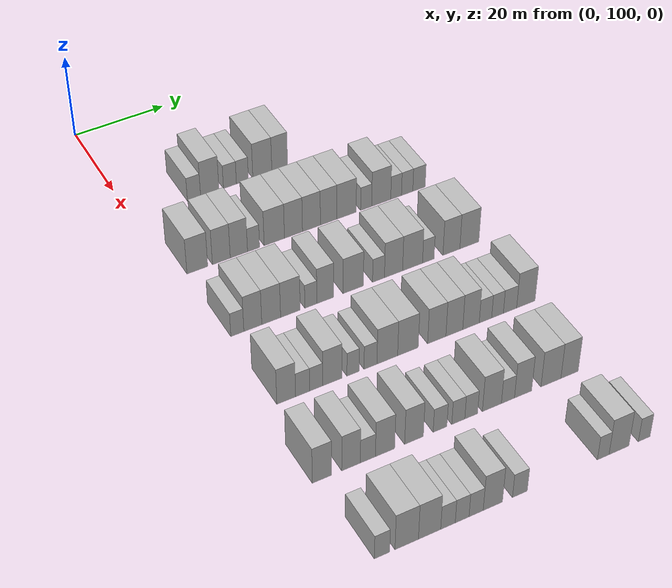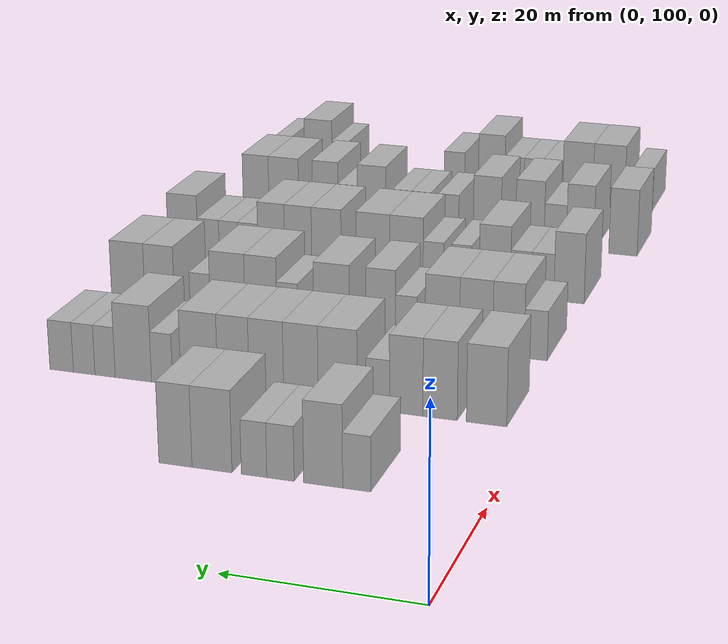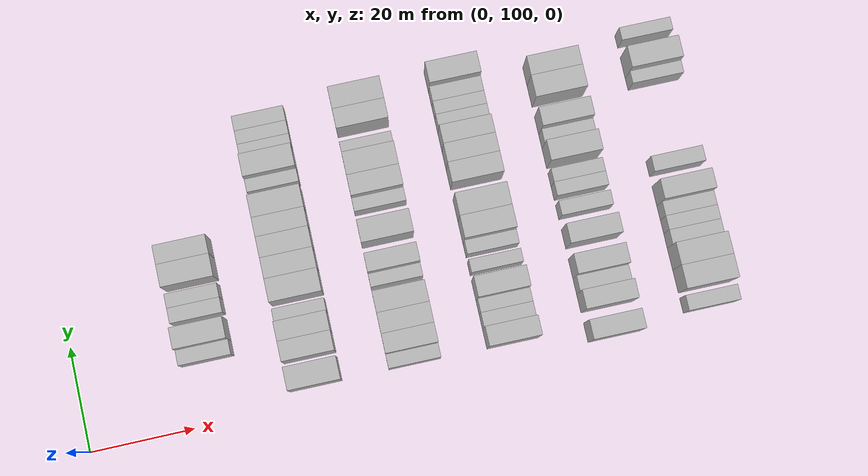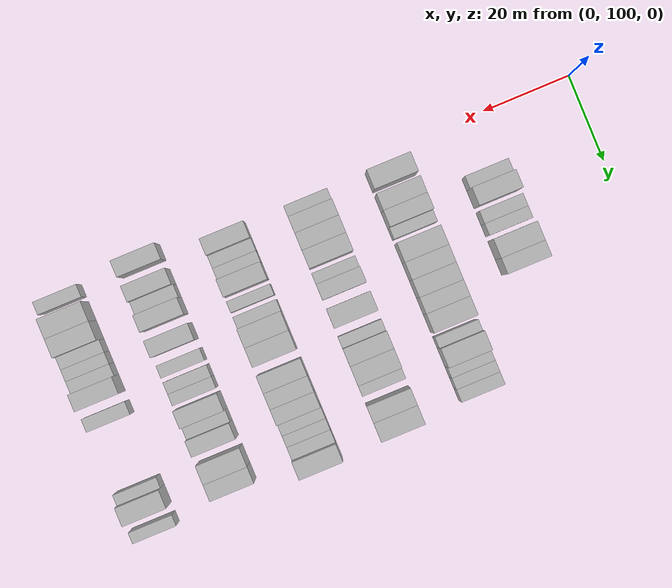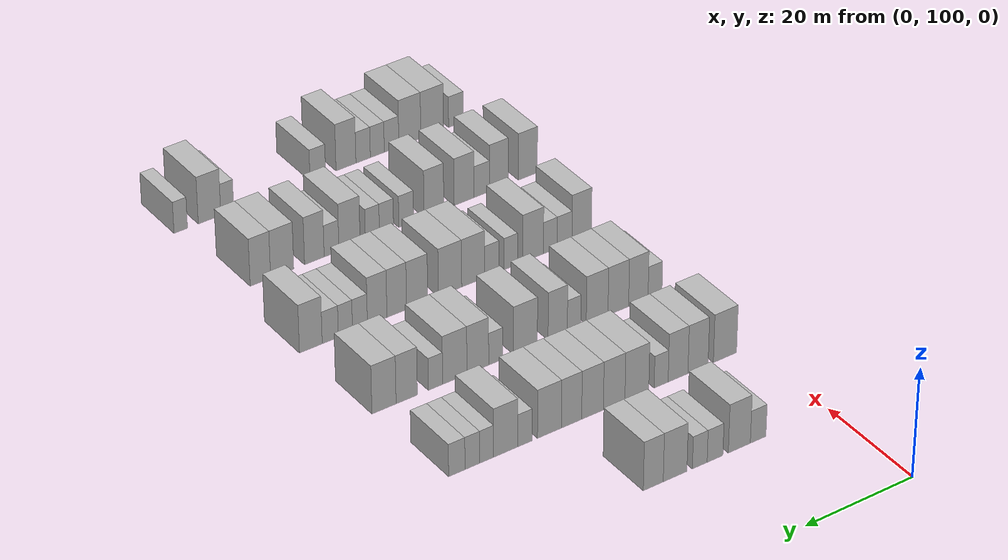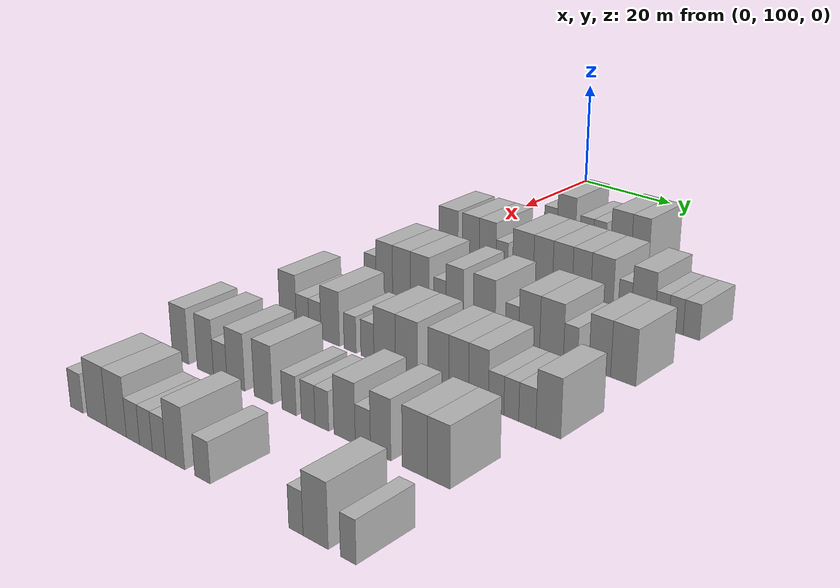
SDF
<sdf version="1.6">
 <world name="default">
  <model name="building_113">
   <static>1</static>
   <pose>25.0000 113.2833 0 0.000000 0.000000 0.000000</pose>
   <link name="link">
    <pose>0 0 3.00 0 0 0</pose>
    <collision name="collision"><geometry><box><size>10.0000 2.9143 6.0000</size></box></geometry></collision>
    <visual name="visual">
     <cast_shadows>0</cast_shadows>
     <geometry><box><size>10.0000 2.9143 6.0000</size></box></geometry>
     <material>
      <script>
       <uri>model://HANNAS_wall/materials/scripts</uri>
       <uri>model://HANNAS_wall/materials/textures</uri>
       <name>vrc/HANNAS_wall</name>
      </script>
     </material>
    </visual>
   </link>
  </model>
  <model name="building_114">
   <static>1</static>
   <pose>25.0000 116.7897 0 0.000000 0.000000 0.000000</pose>
   <link name="link">
    <pose>0 0 4.50 0 0 0</pose>
    <collision name="collision"><geometry><box><size>10.0000 4.0985 9.0000</size></box></geometry></collision>
    <visual name="visual">
     <cast_shadows>0</cast_shadows>
     <geometry><box><size>10.0000 4.0985 9.0000</size></box></geometry>
     <material>
      <script>
       <uri>model://HANNAS_wall/materials/scripts</uri>
       <uri>model://HANNAS_wall/materials/textures</uri>
       <name>vrc/HANNAS_wall</name>
      </script>
     </material>
    </visual>
   </link>
  </model>
  <model name="building_115">
   <static>1</static>
   <pose>25.0000 121.2966 0 0.000000 0.000000 0.000000</pose>
   <link name="link">
    <pose>0 0 3.00 0 0 0</pose>
    <collision name="collision"><geometry><box><size>10.0000 2.9153 6.0000</size></box></geometry></collision>
    <visual name="visual">
     <cast_shadows>0</cast_shadows>
     <geometry><box><size>10.0000 2.9153 6.0000</size></box></geometry>
     <material>
      <script>
       <uri>model://HANNAS_wall/materials/scripts</uri>
       <uri>model://HANNAS_wall/materials/textures</uri>
       <name>vrc/HANNAS_wall</name>
      </script>
     </material>
    </visual>
   </link>
  </model>
  <model name="building_116">
   <static>1</static>
   <pose>25.0000 124.1135 0 0.000000 0.000000 0.000000</pose>
   <link name="link">
    <pose>0 0 3.00 0 0 0</pose>
    <collision name="collision"><geometry><box><size>10.0000 2.7186 6.0000</size></box></geometry></collision>
    <visual name="visual">
     <cast_shadows>0</cast_shadows>
     <geometry><box><size>10.0000 2.7186 6.0000</size></box></geometry>
     <material>
      <script>
       <uri>model://HANNAS_wall/materials/scripts</uri>
       <uri>model://HANNAS_wall/materials/textures</uri>
       <name>vrc/HANNAS_wall</name>
      </script>
     </material>
    </visual>
   </link>
  </model>
  <model name="building_117">
   <static>1</static>
   <pose>25.0000 128.6400 0 0.000000 0.000000 0.000000</pose>
   <link name="link">
    <pose>0 0 4.50 0 0 0</pose>
    <collision name="collision"><geometry><box><size>10.0000 4.3344 9.0000</size></box></geometry></collision>
    <visual name="visual">
     <cast_shadows>0</cast_shadows>
     <geometry><box><size>10.0000 4.3344 9.0000</size></box></geometry>
     <material>
      <script>
       <uri>model://HANNAS_wall/materials/scripts</uri>
       <uri>model://HANNAS_wall/materials/textures</uri>
       <name>vrc/HANNAS_wall</name>
      </script>
     </material>
    </visual>
   </link>
  </model>
  <model name="building_118">
   <static>1</static>
   <pose>25.0000 132.6197 0 0.000000 0.000000 0.000000</pose>
   <link name="link">
    <pose>0 0 4.50 0 0 0</pose>
    <collision name="collision"><geometry><box><size>10.0000 3.6251 9.0000</size></box></geometry></collision>
    <visual name="visual">
     <cast_shadows>0</cast_shadows>
     <geometry><box><size>10.0000 3.6251 9.0000</size></box></geometry>
     <material>
      <script>
       <uri>model://HANNAS_wall/materials/scripts</uri>
       <uri>model://HANNAS_wall/materials/textures</uri>
       <name>vrc/HANNAS_wall</name>
      </script>
     </material>
    </visual>
   </link>
  </model>
  <model name="building_263">
   <static>1</static>
   <pose>44.0000 105.0561 0 0.000000 0.000000 0.000000</pose>
   <link name="link">
    <pose>0 0 4.50 0 0 0</pose>
    <collision name="collision"><geometry><box><size>10.0000 4.4216 9.0000</size></box></geometry></collision>
    <visual name="visual">
     <cast_shadows>0</cast_shadows>
     <geometry><box><size>10.0000 4.4216 9.0000</size></box></geometry>
     <material>
      <script>
       <uri>model://HANNAS_wall/materials/scripts</uri>
       <uri>model://HANNAS_wall/materials/textures</uri>
       <name>vrc/HANNAS_wall</name>
      </script>
     </material>
    </visual>
   </link>
  </model>
  <model name="building_264">
   <static>1</static>
   <pose>44.0000 110.1790 0 0.000000 0.000000 0.000000</pose>
   <link name="link">
    <pose>0 0 4.50 0 0 0</pose>
    <collision name="collision"><geometry><box><size>10.0000 3.8243 9.0000</size></box></geometry></collision>
    <visual name="visual">
     <cast_shadows>0</cast_shadows>
     <geometry><box><size>10.0000 3.8243 9.0000</size></box></geometry>
     <material>
      <script>
       <uri>model://HANNAS_wall/materials/scripts</uri>
       <uri>model://HANNAS_wall/materials/textures</uri>
       <name>vrc/HANNAS_wall</name>
      </script>
     </material>
    </visual>
   </link>
  </model>
  <model name="building_265">
   <static>1</static>
   <pose>44.0000 113.9586 0 0.000000 0.000000 0.000000</pose>
   <link name="link">
    <pose>0 0 4.50 0 0 0</pose>
    <collision name="collision"><geometry><box><size>10.0000 3.7348 9.0000</size></box></geometry></collision>
    <visual name="visual">
     <cast_shadows>0</cast_shadows>
     <geometry><box><size>10.0000 3.7348 9.0000</size></box></geometry>
     <material>
      <script>
       <uri>model://HANNAS_wall/materials/scripts</uri>
       <uri>model://HANNAS_wall/materials/textures</uri>
       <name>vrc/HANNAS_wall</name>
      </script>
     </material>
    </visual>
   </link>
  </model>
  <model name="building_266">
   <static>1</static>
   <pose>44.0000 117.1397 0 0.000000 0.000000 0.000000</pose>
   <link name="link">
    <pose>0 0 3.00 0 0 0</pose>
    <collision name="collision"><geometry><box><size>10.0000 2.6275 6.0000</size></box></geometry></collision>
    <visual name="visual">
     <cast_shadows>0</cast_shadows>
     <geometry><box><size>10.0000 2.6275 6.0000</size></box></geometry>
     <material>
      <script>
       <uri>model://HANNAS_wall/materials/scripts</uri>
       <uri>model://HANNAS_wall/materials/textures</uri>
       <name>vrc/HANNAS_wall</name>
      </script>
     </material>
    </visual>
   </link>
  </model>
  <model name="building_267">
   <static>1</static>
   <pose>44.0000 121.6784 0 0.000000 0.000000 0.000000</pose>
   <link name="link">
    <pose>0 0 4.50 0 0 0</pose>
    <collision name="collision"><geometry><box><size>10.0000 4.4498 9.0000</size></box></geometry></collision>
    <visual name="visual">
     <cast_shadows>0</cast_shadows>
     <geometry><box><size>10.0000 4.4498 9.0000</size></box></geometry>
     <material>
      <script>
       <uri>model://HANNAS_wall/materials/scripts</uri>
       <uri>model://HANNAS_wall/materials/textures</uri>
       <name>vrc/HANNAS_wall</name>
      </script>
     </material>
    </visual>
   </link>
  </model>
  <model name="building_268">
   <static>1</static>
   <pose>44.0000 125.8989 0 0.000000 0.000000 0.000000</pose>
   <link name="link">
    <pose>0 0 4.50 0 0 0</pose>
    <collision name="collision"><geometry><box><size>10.0000 3.9913 9.0000</size></box></geometry></collision>
    <visual name="visual">
     <cast_shadows>0</cast_shadows>
     <geometry><box><size>10.0000 3.9913 9.0000</size></box></geometry>
     <material>
      <script>
       <uri>model://HANNAS_wall/materials/scripts</uri>
       <uri>model://HANNAS_wall/materials/textures</uri>
       <name>vrc/HANNAS_wall</name>
      </script>
     </material>
    </visual>
   </link>
  </model>
  <model name="building_269">
   <static>1</static>
   <pose>44.0000 129.8944 0 0.000000 0.000000 0.000000</pose>
   <link name="link">
    <pose>0 0 4.50 0 0 0</pose>
    <collision name="collision"><geometry><box><size>10.0000 3.9996 9.0000</size></box></geometry></collision>
    <visual name="visual">
     <cast_shadows>0</cast_shadows>
     <geometry><box><size>10.0000 3.9996 9.0000</size></box></geometry>
     <material>
      <script>
       <uri>model://HANNAS_wall/materials/scripts</uri>
       <uri>model://HANNAS_wall/materials/textures</uri>
       <name>vrc/HANNAS_wall</name>
      </script>
     </material>
    </visual>
   </link>
  </model>
  <model name="building_270">
   <static>1</static>
   <pose>44.0000 133.7477 0 0.000000 0.000000 0.000000</pose>
   <link name="link">
    <pose>0 0 4.50 0 0 0</pose>
    <collision name="collision"><geometry><box><size>10.0000 3.7070 9.0000</size></box></geometry></collision>
    <visual name="visual">
     <cast_shadows>0</cast_shadows>
     <geometry><box><size>10.0000 3.7070 9.0000</size></box></geometry>
     <material>
      <script>
       <uri>model://HANNAS_wall/materials/scripts</uri>
       <uri>model://HANNAS_wall/materials/textures</uri>
       <name>vrc/HANNAS_wall</name>
      </script>
     </material>
    </visual>
   </link>
  </model>
  <model name="building_271">
   <static>1</static>
   <pose>44.0000 137.7886 0 0.000000 0.000000 0.000000</pose>
   <link name="link">
    <pose>0 0 4.50 0 0 0</pose>
    <collision name="collision"><geometry><box><size>10.0000 4.3747 9.0000</size></box></geometry></collision>
    <visual name="visual">
     <cast_shadows>0</cast_shadows>
     <geometry><box><size>10.0000 4.3747 9.0000</size></box></geometry>
     <material>
      <script>
       <uri>model://HANNAS_wall/materials/scripts</uri>
       <uri>model://HANNAS_wall/materials/textures</uri>
       <name>vrc/HANNAS_wall</name>
      </script>
     </material>
    </visual>
   </link>
  </model>
  <model name="building_272">
   <static>1</static>
   <pose>44.0000 142.2442 0 0.000000 0.000000 0.000000</pose>
   <link name="link">
    <pose>0 0 3.00 0 0 0</pose>
    <collision name="collision"><geometry><box><size>10.0000 2.5365 6.0000</size></box></geometry></collision>
    <visual name="visual">
     <cast_shadows>0</cast_shadows>
     <geometry><box><size>10.0000 2.5365 6.0000</size></box></geometry>
     <material>
      <script>
       <uri>model://HANNAS_wall/materials/scripts</uri>
       <uri>model://HANNAS_wall/materials/textures</uri>
       <name>vrc/HANNAS_wall</name>
      </script>
     </material>
    </visual>
   </link>
  </model>
  <model name="building_273">
   <static>1</static>
   <pose>44.0000 145.7067 0 0.000000 0.000000 0.000000</pose>
   <link name="link">
    <pose>0 0 4.50 0 0 0</pose>
    <collision name="collision"><geometry><box><size>10.0000 4.3885 9.0000</size></box></geometry></collision>
    <visual name="visual">
     <cast_shadows>0</cast_shadows>
     <geometry><box><size>10.0000 4.3885 9.0000</size></box></geometry>
     <material>
      <script>
       <uri>model://HANNAS_wall/materials/scripts</uri>
       <uri>model://HANNAS_wall/materials/textures</uri>
       <name>vrc/HANNAS_wall</name>
      </script>
     </material>
    </visual>
   </link>
  </model>
  <model name="building_274">
   <static>1</static>
   <pose>44.0000 149.1392 0 0.000000 0.000000 0.000000</pose>
   <link name="link">
    <pose>0 0 3.00 0 0 0</pose>
    <collision name="collision"><geometry><box><size>10.0000 2.4764 6.0000</size></box></geometry></collision>
    <visual name="visual">
     <cast_shadows>0</cast_shadows>
     <geometry><box><size>10.0000 2.4764 6.0000</size></box></geometry>
     <material>
      <script>
       <uri>model://HANNAS_wall/materials/scripts</uri>
       <uri>model://HANNAS_wall/materials/textures</uri>
       <name>vrc/HANNAS_wall</name>
      </script>
     </material>
    </visual>
   </link>
  </model>
  <model name="building_275">
   <static>1</static>
   <pose>44.0000 151.6976 0 0.000000 0.000000 0.000000</pose>
   <link name="link">
    <pose>0 0 3.00 0 0 0</pose>
    <collision name="collision"><geometry><box><size>10.0000 2.6405 6.0000</size></box></geometry></collision>
    <visual name="visual">
     <cast_shadows>0</cast_shadows>
     <geometry><box><size>10.0000 2.6405 6.0000</size></box></geometry>
     <material>
      <script>
       <uri>model://HANNAS_wall/materials/scripts</uri>
       <uri>model://HANNAS_wall/materials/textures</uri>
       <name>vrc/HANNAS_wall</name>
      </script>
     </material>
    </visual>
   </link>
  </model>
  <model name="building_276">
   <static>1</static>
   <pose>44.0000 154.4710 0 0.000000 0.000000 0.000000</pose>
   <link name="link">
    <pose>0 0 3.00 0 0 0</pose>
    <collision name="collision"><geometry><box><size>10.0000 2.9061 6.0000</size></box></geometry></collision>
    <visual name="visual">
     <cast_shadows>0</cast_shadows>
     <geometry><box><size>10.0000 2.9061 6.0000</size></box></geometry>
     <material>
      <script>
       <uri>model://HANNAS_wall/materials/scripts</uri>
       <uri>model://HANNAS_wall/materials/textures</uri>
       <name>vrc/HANNAS_wall</name>
      </script>
     </material>
    </visual>
   </link>
  </model>
  <model name="building_441">
   <static>1</static>
   <pose>63.0000 104.2739 0 0.000000 0.000000 0.000000</pose>
   <link name="link">
    <pose>0 0 3.00 0 0 0</pose>
    <collision name="collision"><geometry><box><size>10.0000 2.6978 6.0000</size></box></geometry></collision>
    <visual name="visual">
     <cast_shadows>0</cast_shadows>
     <geometry><box><size>10.0000 2.6978 6.0000</size></box></geometry>
     <material>
      <script>
       <uri>model://HANNAS_wall/materials/scripts</uri>
       <uri>model://HANNAS_wall/materials/textures</uri>
       <name>vrc/HANNAS_wall</name>
      </script>
     </material>
    </visual>
   </link>
  </model>
  <model name="building_442">
   <static>1</static>
   <pose>63.0000 107.4857 0 0.000000 0.000000 0.000000</pose>
   <link name="link">
    <pose>0 0 4.50 0 0 0</pose>
    <collision name="collision"><geometry><box><size>10.0000 3.7256 9.0000</size></box></geometry></collision>
    <visual name="visual">
     <cast_shadows>0</cast_shadows>
     <geometry><box><size>10.0000 3.7256 9.0000</size></box></geometry>
     <material>
      <script>
       <uri>model://HANNAS_wall/materials/scripts</uri>
       <uri>model://HANNAS_wall/materials/textures</uri>
       <name>vrc/HANNAS_wall</name>
      </script>
     </material>
    </visual>
   </link>
  </model>
  <model name="building_443">
   <static>1</static>
   <pose>63.0000 111.3214 0 0.000000 0.000000 0.000000</pose>
   <link name="link">
    <pose>0 0 4.50 0 0 0</pose>
    <collision name="collision"><geometry><box><size>10.0000 3.9460 9.0000</size></box></geometry></collision>
    <visual name="visual">
     <cast_shadows>0</cast_shadows>
     <geometry><box><size>10.0000 3.9460 9.0000</size></box></geometry>
     <material>
      <script>
       <uri>model://HANNAS_wall/materials/scripts</uri>
       <uri>model://HANNAS_wall/materials/textures</uri>
       <name>vrc/HANNAS_wall</name>
      </script>
     </material>
    </visual>
   </link>
  </model>
  <model name="building_444">
   <static>1</static>
   <pose>63.0000 115.3604 0 0.000000 0.000000 0.000000</pose>
   <link name="link">
    <pose>0 0 4.50 0 0 0</pose>
    <collision name="collision"><geometry><box><size>10.0000 4.1319 9.0000</size></box></geometry></collision>
    <visual name="visual">
     <cast_shadows>0</cast_shadows>
     <geometry><box><size>10.0000 4.1319 9.0000</size></box></geometry>
     <material>
      <script>
       <uri>model://HANNAS_wall/materials/scripts</uri>
       <uri>model://HANNAS_wall/materials/textures</uri>
       <name>vrc/HANNAS_wall</name>
      </script>
     </material>
    </visual>
   </link>
  </model>
  <model name="building_445">
   <static>1</static>
   <pose>63.0000 119.7102 0 0.000000 0.000000 0.000000</pose>
   <link name="link">
    <pose>0 0 3.00 0 0 0</pose>
    <collision name="collision"><geometry><box><size>10.0000 2.5678 6.0000</size></box></geometry></collision>
    <visual name="visual">
     <cast_shadows>0</cast_shadows>
     <geometry><box><size>10.0000 2.5678 6.0000</size></box></geometry>
     <material>
      <script>
       <uri>model://HANNAS_wall/materials/scripts</uri>
       <uri>model://HANNAS_wall/materials/textures</uri>
       <name>vrc/HANNAS_wall</name>
      </script>
     </material>
    </visual>
   </link>
  </model>
  <model name="building_446">
   <static>1</static>
   <pose>63.0000 122.8058 0 0.000000 0.000000 0.000000</pose>
   <link name="link">
    <pose>0 0 4.50 0 0 0</pose>
    <collision name="collision"><geometry><box><size>10.0000 3.6233 9.0000</size></box></geometry></collision>
    <visual name="visual">
     <cast_shadows>0</cast_shadows>
     <geometry><box><size>10.0000 3.6233 9.0000</size></box></geometry>
     <material>
      <script>
       <uri>model://HANNAS_wall/materials/scripts</uri>
       <uri>model://HANNAS_wall/materials/textures</uri>
       <name>vrc/HANNAS_wall</name>
      </script>
     </material>
    </visual>
   </link>
  </model>
  <model name="building_447">
   <static>1</static>
   <pose>63.0000 128.8305 0 0.000000 0.000000 0.000000</pose>
   <link name="link">
    <pose>0 0 4.50 0 0 0</pose>
    <collision name="collision"><geometry><box><size>10.0000 4.4262 9.0000</size></box></geometry></collision>
    <visual name="visual">
     <cast_shadows>0</cast_shadows>
     <geometry><box><size>10.0000 4.4262 9.0000</size></box></geometry>
     <material>
      <script>
       <uri>model://HANNAS_wall/materials/scripts</uri>
       <uri>model://HANNAS_wall/materials/textures</uri>
       <name>vrc/HANNAS_wall</name>
      </script>
     </material>
    </visual>
   </link>
  </model>
  <model name="building_448">
   <static>1</static>
   <pose>63.0000 134.3528 0 0.000000 0.000000 0.000000</pose>
   <link name="link">
    <pose>0 0 3.00 0 0 0</pose>
    <collision name="collision"><geometry><box><size>10.0000 2.6183 6.0000</size></box></geometry></collision>
    <visual name="visual">
     <cast_shadows>0</cast_shadows>
     <geometry><box><size>10.0000 2.6183 6.0000</size></box></geometry>
     <material>
      <script>
       <uri>model://HANNAS_wall/materials/scripts</uri>
       <uri>model://HANNAS_wall/materials/textures</uri>
       <name>vrc/HANNAS_wall</name>
      </script>
     </material>
    </visual>
   </link>
  </model>
  <model name="building_449">
   <static>1</static>
   <pose>63.0000 137.6667 0 0.000000 0.000000 0.000000</pose>
   <link name="link">
    <pose>0 0 4.50 0 0 0</pose>
    <collision name="collision"><geometry><box><size>10.0000 4.0096 9.0000</size></box></geometry></collision>
    <visual name="visual">
     <cast_shadows>0</cast_shadows>
     <geometry><box><size>10.0000 4.0096 9.0000</size></box></geometry>
     <material>
      <script>
       <uri>model://HANNAS_wall/materials/scripts</uri>
       <uri>model://HANNAS_wall/materials/textures</uri>
       <name>vrc/HANNAS_wall</name>
      </script>
     </material>
    </visual>
   </link>
  </model>
  <model name="building_450">
   <static>1</static>
   <pose>63.0000 141.8943 0 0.000000 0.000000 0.000000</pose>
   <link name="link">
    <pose>0 0 4.50 0 0 0</pose>
    <collision name="collision"><geometry><box><size>10.0000 4.4457 9.0000</size></box></geometry></collision>
    <visual name="visual">
     <cast_shadows>0</cast_shadows>
     <geometry><box><size>10.0000 4.4457 9.0000</size></box></geometry>
     <material>
      <script>
       <uri>model://HANNAS_wall/materials/scripts</uri>
       <uri>model://HANNAS_wall/materials/textures</uri>
       <name>vrc/HANNAS_wall</name>
      </script>
     </material>
    </visual>
   </link>
  </model>
  <model name="building_451">
   <static>1</static>
   <pose>63.0000 145.4130 0 0.000000 0.000000 0.000000</pose>
   <link name="link">
    <pose>0 0 3.00 0 0 0</pose>
    <collision name="collision"><geometry><box><size>10.0000 2.5918 6.0000</size></box></geometry></collision>
    <visual name="visual">
     <cast_shadows>0</cast_shadows>
     <geometry><box><size>10.0000 2.5918 6.0000</size></box></geometry>
     <material>
      <script>
       <uri>model://HANNAS_wall/materials/scripts</uri>
       <uri>model://HANNAS_wall/materials/textures</uri>
       <name>vrc/HANNAS_wall</name>
      </script>
     </material>
    </visual>
   </link>
  </model>
  <model name="building_452">
   <static>1</static>
   <pose>63.0000 150.6319 0 0.000000 0.000000 0.000000</pose>
   <link name="link">
    <pose>0 0 4.50 0 0 0</pose>
    <collision name="collision"><geometry><box><size>10.0000 3.8460 9.0000</size></box></geometry></collision>
    <visual name="visual">
     <cast_shadows>0</cast_shadows>
     <geometry><box><size>10.0000 3.8460 9.0000</size></box></geometry>
     <material>
      <script>
       <uri>model://HANNAS_wall/materials/scripts</uri>
       <uri>model://HANNAS_wall/materials/textures</uri>
       <name>vrc/HANNAS_wall</name>
      </script>
     </material>
    </visual>
   </link>
  </model>
  <model name="building_453">
   <static>1</static>
   <pose>63.0000 154.7284 0 0.000000 0.000000 0.000000</pose>
   <link name="link">
    <pose>0 0 4.50 0 0 0</pose>
    <collision name="collision"><geometry><box><size>10.0000 4.3468 9.0000</size></box></geometry></collision>
    <visual name="visual">
     <cast_shadows>0</cast_shadows>
     <geometry><box><size>10.0000 4.3468 9.0000</size></box></geometry>
     <material>
      <script>
       <uri>model://HANNAS_wall/materials/scripts</uri>
       <uri>model://HANNAS_wall/materials/textures</uri>
       <name>vrc/HANNAS_wall</name>
      </script>
     </material>
    </visual>
   </link>
  </model>
  <model name="building_606">
   <static>1</static>
   <pose>82.0000 104.6655 0 0.000000 0.000000 0.000000</pose>
   <link name="link">
    <pose>0 0 4.50 0 0 0</pose>
    <collision name="collision"><geometry><box><size>10.0000 3.7875 9.0000</size></box></geometry></collision>
    <visual name="visual">
     <cast_shadows>0</cast_shadows>
     <geometry><box><size>10.0000 3.7875 9.0000</size></box></geometry>
     <material>
      <script>
       <uri>model://HANNAS_wall/materials/scripts</uri>
       <uri>model://HANNAS_wall/materials/textures</uri>
       <name>vrc/HANNAS_wall</name>
      </script>
     </material>
    </visual>
   </link>
  </model>
  <model name="building_607">
   <static>1</static>
   <pose>82.0000 107.9809 0 0.000000 0.000000 0.000000</pose>
   <link name="link">
    <pose>0 0 3.00 0 0 0</pose>
    <collision name="collision"><geometry><box><size>10.0000 2.8433 6.0000</size></box></geometry></collision>
    <visual name="visual">
     <cast_shadows>0</cast_shadows>
     <geometry><box><size>10.0000 2.8433 6.0000</size></box></geometry>
     <material>
      <script>
       <uri>model://HANNAS_wall/materials/scripts</uri>
       <uri>model://HANNAS_wall/materials/textures</uri>
       <name>vrc/HANNAS_wall</name>
      </script>
     </material>
    </visual>
   </link>
  </model>
  <model name="building_608">
   <static>1</static>
   <pose>82.0000 110.7301 0 0.000000 0.000000 0.000000</pose>
   <link name="link">
    <pose>0 0 3.00 0 0 0</pose>
    <collision name="collision"><geometry><box><size>10.0000 2.6552 6.0000</size></box></geometry></collision>
    <visual name="visual">
     <cast_shadows>0</cast_shadows>
     <geometry><box><size>10.0000 2.6552 6.0000</size></box></geometry>
     <material>
      <script>
       <uri>model://HANNAS_wall/materials/scripts</uri>
       <uri>model://HANNAS_wall/materials/textures</uri>
       <name>vrc/HANNAS_wall</name>
      </script>
     </material>
    </visual>
   </link>
  </model>
  <model name="building_609">
   <static>1</static>
   <pose>82.0000 114.0547 0 0.000000 0.000000 0.000000</pose>
   <link name="link">
    <pose>0 0 4.50 0 0 0</pose>
    <collision name="collision"><geometry><box><size>10.0000 3.9939 9.0000</size></box></geometry></collision>
    <visual name="visual">
     <cast_shadows>0</cast_shadows>
     <geometry><box><size>10.0000 3.9939 9.0000</size></box></geometry>
     <material>
      <script>
       <uri>model://HANNAS_wall/materials/scripts</uri>
       <uri>model://HANNAS_wall/materials/textures</uri>
       <name>vrc/HANNAS_wall</name>
      </script>
     </material>
    </visual>
   </link>
  </model>
  <model name="building_610">
   <static>1</static>
   <pose>82.0000 118.3256 0 0.000000 0.000000 0.000000</pose>
   <link name="link">
    <pose>0 0 3.00 0 0 0</pose>
    <collision name="collision"><geometry><box><size>10.0000 2.5481 6.0000</size></box></geometry></collision>
    <visual name="visual">
     <cast_shadows>0</cast_shadows>
     <geometry><box><size>10.0000 2.5481 6.0000</size></box></geometry>
     <material>
      <script>
       <uri>model://HANNAS_wall/materials/scripts</uri>
       <uri>model://HANNAS_wall/materials/textures</uri>
       <name>vrc/HANNAS_wall</name>
      </script>
     </material>
    </visual>
   </link>
  </model>
  <model name="building_611">
   <static>1</static>
   <pose>82.0000 121.9488 0 0.000000 0.000000 0.000000</pose>
   <link name="link">
    <pose>0 0 3.00 0 0 0</pose>
    <collision name="collision"><geometry><box><size>10.0000 2.6983 6.0000</size></box></geometry></collision>
    <visual name="visual">
     <cast_shadows>0</cast_shadows>
     <geometry><box><size>10.0000 2.6983 6.0000</size></box></geometry>
     <material>
      <script>
       <uri>model://HANNAS_wall/materials/scripts</uri>
       <uri>model://HANNAS_wall/materials/textures</uri>
       <name>vrc/HANNAS_wall</name>
      </script>
     </material>
    </visual>
   </link>
  </model>
  <model name="building_612">
   <static>1</static>
   <pose>82.0000 125.4761 0 0.000000 0.000000 0.000000</pose>
   <link name="link">
    <pose>0 0 4.50 0 0 0</pose>
    <collision name="collision"><geometry><box><size>10.0000 4.3561 9.0000</size></box></geometry></collision>
    <visual name="visual">
     <cast_shadows>0</cast_shadows>
     <geometry><box><size>10.0000 4.3561 9.0000</size></box></geometry>
     <material>
      <script>
       <uri>model://HANNAS_wall/materials/scripts</uri>
       <uri>model://HANNAS_wall/materials/textures</uri>
       <name>vrc/HANNAS_wall</name>
      </script>
     </material>
    </visual>
   </link>
  </model>
  <model name="building_613">
   <static>1</static>
   <pose>82.0000 129.8440 0 0.000000 0.000000 0.000000</pose>
   <link name="link">
    <pose>0 0 4.50 0 0 0</pose>
    <collision name="collision"><geometry><box><size>10.0000 4.3797 9.0000</size></box></geometry></collision>
    <visual name="visual">
     <cast_shadows>0</cast_shadows>
     <geometry><box><size>10.0000 4.3797 9.0000</size></box></geometry>
     <material>
      <script>
       <uri>model://HANNAS_wall/materials/scripts</uri>
       <uri>model://HANNAS_wall/materials/textures</uri>
       <name>vrc/HANNAS_wall</name>
      </script>
     </material>
    </visual>
   </link>
  </model>
  <model name="building_614">
   <static>1</static>
   <pose>82.0000 136.0008 0 0.000000 0.000000 0.000000</pose>
   <link name="link">
    <pose>0 0 4.50 0 0 0</pose>
    <collision name="collision"><geometry><box><size>10.0000 3.9339 9.0000</size></box></geometry></collision>
    <visual name="visual">
     <cast_shadows>0</cast_shadows>
     <geometry><box><size>10.0000 3.9339 9.0000</size></box></geometry>
     <material>
      <script>
       <uri>model://HANNAS_wall/materials/scripts</uri>
       <uri>model://HANNAS_wall/materials/textures</uri>
       <name>vrc/HANNAS_wall</name>
      </script>
     </material>
    </visual>
   </link>
  </model>
  <model name="building_615">
   <static>1</static>
   <pose>82.0000 139.7919 0 0.000000 0.000000 0.000000</pose>
   <link name="link">
    <pose>0 0 4.50 0 0 0</pose>
    <collision name="collision"><geometry><box><size>10.0000 3.6484 9.0000</size></box></geometry></collision>
    <visual name="visual">
     <cast_shadows>0</cast_shadows>
     <geometry><box><size>10.0000 3.6484 9.0000</size></box></geometry>
     <material>
      <script>
       <uri>model://HANNAS_wall/materials/scripts</uri>
       <uri>model://HANNAS_wall/materials/textures</uri>
       <name>vrc/HANNAS_wall</name>
      </script>
     </material>
    </visual>
   </link>
  </model>
  <model name="building_616">
   <static>1</static>
   <pose>82.0000 143.4165 0 0.000000 0.000000 0.000000</pose>
   <link name="link">
    <pose>0 0 4.50 0 0 0</pose>
    <collision name="collision"><geometry><box><size>10.0000 3.6008 9.0000</size></box></geometry></collision>
    <visual name="visual">
     <cast_shadows>0</cast_shadows>
     <geometry><box><size>10.0000 3.6008 9.0000</size></box></geometry>
     <material>
      <script>
       <uri>model://HANNAS_wall/materials/scripts</uri>
       <uri>model://HANNAS_wall/materials/textures</uri>
       <name>vrc/HANNAS_wall</name>
      </script>
     </material>
    </visual>
   </link>
  </model>
  <model name="building_617">
   <static>1</static>
   <pose>82.0000 146.5874 0 0.000000 0.000000 0.000000</pose>
   <link name="link">
    <pose>0 0 3.00 0 0 0</pose>
    <collision name="collision"><geometry><box><size>10.0000 2.7409 6.0000</size></box></geometry></collision>
    <visual name="visual">
     <cast_shadows>0</cast_shadows>
     <geometry><box><size>10.0000 2.7409 6.0000</size></box></geometry>
     <material>
      <script>
       <uri>model://HANNAS_wall/materials/scripts</uri>
       <uri>model://HANNAS_wall/materials/textures</uri>
       <name>vrc/HANNAS_wall</name>
      </script>
     </material>
    </visual>
   </link>
  </model>
  <model name="building_618">
   <static>1</static>
   <pose>82.0000 149.2492 0 0.000000 0.000000 0.000000</pose>
   <link name="link">
    <pose>0 0 3.00 0 0 0</pose>
    <collision name="collision"><geometry><box><size>10.0000 2.5828 6.0000</size></box></geometry></collision>
    <visual name="visual">
     <cast_shadows>0</cast_shadows>
     <geometry><box><size>10.0000 2.5828 6.0000</size></box></geometry>
     <material>
      <script>
       <uri>model://HANNAS_wall/materials/scripts</uri>
       <uri>model://HANNAS_wall/materials/textures</uri>
       <name>vrc/HANNAS_wall</name>
      </script>
     </material>
    </visual>
   </link>
  </model>
  <model name="building_619">
   <static>1</static>
   <pose>82.0000 152.0160 0 0.000000 0.000000 0.000000</pose>
   <link name="link">
    <pose>0 0 3.00 0 0 0</pose>
    <collision name="collision"><geometry><box><size>10.0000 2.9507 6.0000</size></box></geometry></collision>
    <visual name="visual">
     <cast_shadows>0</cast_shadows>
     <geometry><box><size>10.0000 2.9507 6.0000</size></box></geometry>
     <material>
      <script>
       <uri>model://HANNAS_wall/materials/scripts</uri>
       <uri>model://HANNAS_wall/materials/textures</uri>
       <name>vrc/HANNAS_wall</name>
      </script>
     </material>
    </visual>
   </link>
  </model>
  <model name="building_620">
   <static>1</static>
   <pose>82.0000 155.5542 0 0.000000 0.000000 0.000000</pose>
   <link name="link">
    <pose>0 0 4.50 0 0 0</pose>
    <collision name="collision"><geometry><box><size>10.0000 4.1256 9.0000</size></box></geometry></collision>
    <visual name="visual">
     <cast_shadows>0</cast_shadows>
     <geometry><box><size>10.0000 4.1256 9.0000</size></box></geometry>
     <material>
      <script>
       <uri>model://HANNAS_wall/materials/scripts</uri>
       <uri>model://HANNAS_wall/materials/textures</uri>
       <name>vrc/HANNAS_wall</name>
      </script>
     </material>
    </visual>
   </link>
  </model>
  <model name="building_784">
   <static>1</static>
   <pose>101.0000 101.7472 0 0.000000 0.000000 0.000000</pose>
   <link name="link">
    <pose>0 0 4.50 0 0 0</pose>
    <collision name="collision"><geometry><box><size>10.0000 3.7491 9.0000</size></box></geometry></collision>
    <visual name="visual">
     <cast_shadows>0</cast_shadows>
     <geometry><box><size>10.0000 3.7491 9.0000</size></box></geometry>
     <material>
      <script>
       <uri>model://HANNAS_wall/materials/scripts</uri>
       <uri>model://HANNAS_wall/materials/textures</uri>
       <name>vrc/HANNAS_wall</name>
      </script>
     </material>
    </visual>
   </link>
  </model>
  <model name="building_785">
   <static>1</static>
   <pose>101.0000 107.4546 0 0.000000 0.000000 0.000000</pose>
   <link name="link">
    <pose>0 0 4.50 0 0 0</pose>
    <collision name="collision"><geometry><box><size>10.0000 3.6657 9.0000</size></box></geometry></collision>
    <visual name="visual">
     <cast_shadows>0</cast_shadows>
     <geometry><box><size>10.0000 3.6657 9.0000</size></box></geometry>
     <material>
      <script>
       <uri>model://HANNAS_wall/materials/scripts</uri>
       <uri>model://HANNAS_wall/materials/textures</uri>
       <name>vrc/HANNAS_wall</name>
      </script>
     </material>
    </visual>
   </link>
  </model>
  <model name="building_786">
   <static>1</static>
   <pose>101.0000 110.7863 0 0.000000 0.000000 0.000000</pose>
   <link name="link">
    <pose>0 0 3.00 0 0 0</pose>
    <collision name="collision"><geometry><box><size>10.0000 2.9978 6.0000</size></box></geometry></collision>
    <visual name="visual">
     <cast_shadows>0</cast_shadows>
     <geometry><box><size>10.0000 2.9978 6.0000</size></box></geometry>
     <material>
      <script>
       <uri>model://HANNAS_wall/materials/scripts</uri>
       <uri>model://HANNAS_wall/materials/textures</uri>
       <name>vrc/HANNAS_wall</name>
      </script>
     </material>
    </visual>
   </link>
  </model>
  <model name="building_787">
   <static>1</static>
   <pose>101.0000 114.2125 0 0.000000 0.000000 0.000000</pose>
   <link name="link">
    <pose>0 0 4.50 0 0 0</pose>
    <collision name="collision"><geometry><box><size>10.0000 3.8547 9.0000</size></box></geometry></collision>
    <visual name="visual">
     <cast_shadows>0</cast_shadows>
     <geometry><box><size>10.0000 3.8547 9.0000</size></box></geometry>
     <material>
      <script>
       <uri>model://HANNAS_wall/materials/scripts</uri>
       <uri>model://HANNAS_wall/materials/textures</uri>
       <name>vrc/HANNAS_wall</name>
      </script>
     </material>
    </visual>
   </link>
  </model>
  <model name="building_788">
   <static>1</static>
   <pose>101.0000 120.0401 0 0.000000 0.000000 0.000000</pose>
   <link name="link">
    <pose>0 0 4.50 0 0 0</pose>
    <collision name="collision"><geometry><box><size>10.0000 3.8005 9.0000</size></box></geometry></collision>
    <visual name="visual">
     <cast_shadows>0</cast_shadows>
     <geometry><box><size>10.0000 3.8005 9.0000</size></box></geometry>
     <material>
      <script>
       <uri>model://HANNAS_wall/materials/scripts</uri>
       <uri>model://HANNAS_wall/materials/textures</uri>
       <name>vrc/HANNAS_wall</name>
      </script>
     </material>
    </visual>
   </link>
  </model>
  <model name="building_789">
   <static>1</static>
   <pose>101.0000 125.3519 0 0.000000 0.000000 0.000000</pose>
   <link name="link">
    <pose>0 0 3.00 0 0 0</pose>
    <collision name="collision"><geometry><box><size>10.0000 2.8231 6.0000</size></box></geometry></collision>
    <visual name="visual">
     <cast_shadows>0</cast_shadows>
     <geometry><box><size>10.0000 2.8231 6.0000</size></box></geometry>
     <material>
      <script>
       <uri>model://HANNAS_wall/materials/scripts</uri>
       <uri>model://HANNAS_wall/materials/textures</uri>
       <name>vrc/HANNAS_wall</name>
      </script>
     </material>
    </visual>
   </link>
  </model>
  <model name="building_790">
   <static>1</static>
   <pose>101.0000 129.1123 0 0.000000 0.000000 0.000000</pose>
   <link name="link">
    <pose>0 0 3.00 0 0 0</pose>
    <collision name="collision"><geometry><box><size>10.0000 2.6979 6.0000</size></box></geometry></collision>
    <visual name="visual">
     <cast_shadows>0</cast_shadows>
     <geometry><box><size>10.0000 2.6979 6.0000</size></box></geometry>
     <material>
      <script>
       <uri>model://HANNAS_wall/materials/scripts</uri>
       <uri>model://HANNAS_wall/materials/textures</uri>
       <name>vrc/HANNAS_wall</name>
      </script>
     </material>
    </visual>
   </link>
  </model>
  <model name="building_791">
   <static>1</static>
   <pose>101.0000 131.7895 0 0.000000 0.000000 0.000000</pose>
   <link name="link">
    <pose>0 0 3.00 0 0 0</pose>
    <collision name="collision"><geometry><box><size>10.0000 2.6565 6.0000</size></box></geometry></collision>
    <visual name="visual">
     <cast_shadows>0</cast_shadows>
     <geometry><box><size>10.0000 2.6565 6.0000</size></box></geometry>
     <material>
      <script>
       <uri>model://HANNAS_wall/materials/scripts</uri>
       <uri>model://HANNAS_wall/materials/textures</uri>
       <name>vrc/HANNAS_wall</name>
      </script>
     </material>
    </visual>
   </link>
  </model>
  <model name="building_792">
   <static>1</static>
   <pose>101.0000 136.1093 0 0.000000 0.000000 0.000000</pose>
   <link name="link">
    <pose>0 0 4.50 0 0 0</pose>
    <collision name="collision"><geometry><box><size>10.0000 3.9831 9.0000</size></box></geometry></collision>
    <visual name="visual">
     <cast_shadows>0</cast_shadows>
     <geometry><box><size>10.0000 3.9831 9.0000</size></box></geometry>
     <material>
      <script>
       <uri>model://HANNAS_wall/materials/scripts</uri>
       <uri>model://HANNAS_wall/materials/textures</uri>
       <name>vrc/HANNAS_wall</name>
      </script>
     </material>
    </visual>
   </link>
  </model>
  <model name="building_793">
   <static>1</static>
   <pose>101.0000 139.4866 0 0.000000 0.000000 0.000000</pose>
   <link name="link">
    <pose>0 0 3.00 0 0 0</pose>
    <collision name="collision"><geometry><box><size>10.0000 2.7715 6.0000</size></box></geometry></collision>
    <visual name="visual">
     <cast_shadows>0</cast_shadows>
     <geometry><box><size>10.0000 2.7715 6.0000</size></box></geometry>
     <material>
      <script>
       <uri>model://HANNAS_wall/materials/scripts</uri>
       <uri>model://HANNAS_wall/materials/textures</uri>
       <name>vrc/HANNAS_wall</name>
      </script>
     </material>
    </visual>
   </link>
  </model>
  <model name="building_794">
   <static>1</static>
   <pose>101.0000 142.6982 0 0.000000 0.000000 0.000000</pose>
   <link name="link">
    <pose>0 0 4.50 0 0 0</pose>
    <collision name="collision"><geometry><box><size>10.0000 3.6518 9.0000</size></box></geometry></collision>
    <visual name="visual">
     <cast_shadows>0</cast_shadows>
     <geometry><box><size>10.0000 3.6518 9.0000</size></box></geometry>
     <material>
      <script>
       <uri>model://HANNAS_wall/materials/scripts</uri>
       <uri>model://HANNAS_wall/materials/textures</uri>
       <name>vrc/HANNAS_wall</name>
      </script>
     </material>
    </visual>
   </link>
  </model>
  <model name="building_795">
   <static>1</static>
   <pose>101.0000 148.6709 0 0.000000 0.000000 0.000000</pose>
   <link name="link">
    <pose>0 0 4.50 0 0 0</pose>
    <collision name="collision"><geometry><box><size>10.0000 4.2936 9.0000</size></box></geometry></collision>
    <visual name="visual">
     <cast_shadows>0</cast_shadows>
     <geometry><box><size>10.0000 4.2936 9.0000</size></box></geometry>
     <material>
      <script>
       <uri>model://HANNAS_wall/materials/scripts</uri>
       <uri>model://HANNAS_wall/materials/textures</uri>
       <name>vrc/HANNAS_wall</name>
      </script>
     </material>
    </visual>
   </link>
  </model>
  <model name="building_796">
   <static>1</static>
   <pose>101.0000 152.6968 0 0.000000 0.000000 0.000000</pose>
   <link name="link">
    <pose>0 0 4.50 0 0 0</pose>
    <collision name="collision"><geometry><box><size>10.0000 3.7582 9.0000</size></box></geometry></collision>
    <visual name="visual">
     <cast_shadows>0</cast_shadows>
     <geometry><box><size>10.0000 3.7582 9.0000</size></box></geometry>
     <material>
      <script>
       <uri>model://HANNAS_wall/materials/scripts</uri>
       <uri>model://HANNAS_wall/materials/textures</uri>
       <name>vrc/HANNAS_wall</name>
      </script>
     </material>
    </visual>
   </link>
  </model>
  <model name="building_953">
   <static>1</static>
   <pose>120.0000 102.8462 0 0.000000 0.000000 0.000000</pose>
   <link name="link">
    <pose>0 0 3.00 0 0 0</pose>
    <collision name="collision"><geometry><box><size>10.0000 2.9276 6.0000</size></box></geometry></collision>
    <visual name="visual">
     <cast_shadows>0</cast_shadows>
     <geometry><box><size>10.0000 2.9276 6.0000</size></box></geometry>
     <material>
      <script>
       <uri>model://HANNAS_wall/materials/scripts</uri>
       <uri>model://HANNAS_wall/materials/textures</uri>
       <name>vrc/HANNAS_wall</name>
      </script>
     </material>
    </visual>
   </link>
  </model>
  <model name="building_954">
   <static>1</static>
   <pose>120.0000 107.5596 0 0.000000 0.000000 0.000000</pose>
   <link name="link">
    <pose>0 0 4.50 0 0 0</pose>
    <collision name="collision"><geometry><box><size>10.0000 4.4991 9.0000</size></box></geometry></collision>
    <visual name="visual">
     <cast_shadows>0</cast_shadows>
     <geometry><box><size>10.0000 4.4991 9.0000</size></box></geometry>
     <material>
      <script>
       <uri>model://HANNAS_wall/materials/scripts</uri>
       <uri>model://HANNAS_wall/materials/textures</uri>
       <name>vrc/HANNAS_wall</name>
      </script>
     </material>
    </visual>
   </link>
  </model>
  <model name="building_955">
   <static>1</static>
   <pose>120.0000 111.9664 0 0.000000 0.000000 0.000000</pose>
   <link name="link">
    <pose>0 0 4.50 0 0 0</pose>
    <collision name="collision"><geometry><box><size>10.0000 4.3145 9.0000</size></box></geometry></collision>
    <visual name="visual">
     <cast_shadows>0</cast_shadows>
     <geometry><box><size>10.0000 4.3145 9.0000</size></box></geometry>
     <material>
      <script>
       <uri>model://HANNAS_wall/materials/scripts</uri>
       <uri>model://HANNAS_wall/materials/textures</uri>
       <name>vrc/HANNAS_wall</name>
      </script>
     </material>
    </visual>
   </link>
  </model>
  <model name="building_956">
   <static>1</static>
   <pose>120.0000 115.5451 0 0.000000 0.000000 0.000000</pose>
   <link name="link">
    <pose>0 0 3.00 0 0 0</pose>
    <collision name="collision"><geometry><box><size>10.0000 2.8429 6.0000</size></box></geometry></collision>
    <visual name="visual">
     <cast_shadows>0</cast_shadows>
     <geometry><box><size>10.0000 2.8429 6.0000</size></box></geometry>
     <material>
      <script>
       <uri>model://HANNAS_wall/materials/scripts</uri>
       <uri>model://HANNAS_wall/materials/textures</uri>
       <name>vrc/HANNAS_wall</name>
      </script>
     </material>
    </visual>
   </link>
  </model>
  <model name="building_957">
   <static>1</static>
   <pose>120.0000 118.3224 0 0.000000 0.000000 0.000000</pose>
   <link name="link">
    <pose>0 0 3.00 0 0 0</pose>
    <collision name="collision"><geometry><box><size>10.0000 2.7116 6.0000</size></box></geometry></collision>
    <visual name="visual">
     <cast_shadows>0</cast_shadows>
     <geometry><box><size>10.0000 2.7116 6.0000</size></box></geometry>
     <material>
      <script>
       <uri>model://HANNAS_wall/materials/scripts</uri>
       <uri>model://HANNAS_wall/materials/textures</uri>
       <name>vrc/HANNAS_wall</name>
      </script>
     </material>
    </visual>
   </link>
  </model>
  <model name="building_958">
   <static>1</static>
   <pose>120.0000 121.0790 0 0.000000 0.000000 0.000000</pose>
   <link name="link">
    <pose>0 0 3.00 0 0 0</pose>
    <collision name="collision"><geometry><box><size>10.0000 2.8016 6.0000</size></box></geometry></collision>
    <visual name="visual">
     <cast_shadows>0</cast_shadows>
     <geometry><box><size>10.0000 2.8016 6.0000</size></box></geometry>
     <material>
      <script>
       <uri>model://HANNAS_wall/materials/scripts</uri>
       <uri>model://HANNAS_wall/materials/textures</uri>
       <name>vrc/HANNAS_wall</name>
      </script>
     </material>
    </visual>
   </link>
  </model>
  <model name="building_959">
   <static>1</static>
   <pose>120.0000 124.4034 0 0.000000 0.000000 0.000000</pose>
   <link name="link">
    <pose>0 0 4.50 0 0 0</pose>
    <collision name="collision"><geometry><box><size>10.0000 3.8472 9.0000</size></box></geometry></collision>
    <visual name="visual">
     <cast_shadows>0</cast_shadows>
     <geometry><box><size>10.0000 3.8472 9.0000</size></box></geometry>
     <material>
      <script>
       <uri>model://HANNAS_wall/materials/scripts</uri>
       <uri>model://HANNAS_wall/materials/textures</uri>
       <name>vrc/HANNAS_wall</name>
      </script>
     </material>
    </visual>
   </link>
  </model>
  <model name="building_960">
   <static>1</static>
   <pose>120.0000 129.8242 0 0.000000 0.000000 0.000000</pose>
   <link name="link">
    <pose>0 0 3.00 0 0 0</pose>
    <collision name="collision"><geometry><box><size>10.0000 2.9944 6.0000</size></box></geometry></collision>
    <visual name="visual">
     <cast_shadows>0</cast_shadows>
     <geometry><box><size>10.0000 2.9944 6.0000</size></box></geometry>
     <material>
      <script>
       <uri>model://HANNAS_wall/materials/scripts</uri>
       <uri>model://HANNAS_wall/materials/textures</uri>
       <name>vrc/HANNAS_wall</name>
      </script>
     </material>
    </visual>
   </link>
  </model>
  <model name="building_961">
   <static>1</static>
   <pose>120.0000 146.9794 0 0.000000 0.000000 0.000000</pose>
   <link name="link">
    <pose>0 0 3.00 0 0 0</pose>
    <collision name="collision"><geometry><box><size>10.0000 2.4387 6.0000</size></box></geometry></collision>
    <visual name="visual">
     <cast_shadows>0</cast_shadows>
     <geometry><box><size>10.0000 2.4387 6.0000</size></box></geometry>
     <material>
      <script>
       <uri>model://HANNAS_wall/materials/scripts</uri>
       <uri>model://HANNAS_wall/materials/textures</uri>
       <name>vrc/HANNAS_wall</name>
      </script>
     </material>
    </visual>
   </link>
  </model>
  <model name="building_962">
   <static>1</static>
   <pose>120.0000 150.3004 0 0.000000 0.000000 0.000000</pose>
   <link name="link">
    <pose>0 0 4.50 0 0 0</pose>
    <collision name="collision"><geometry><box><size>10.0000 4.2031 9.0000</size></box></geometry></collision>
    <visual name="visual">
     <cast_shadows>0</cast_shadows>
     <geometry><box><size>10.0000 4.2031 9.0000</size></box></geometry>
     <material>
      <script>
       <uri>model://HANNAS_wall/materials/scripts</uri>
       <uri>model://HANNAS_wall/materials/textures</uri>
       <name>vrc/HANNAS_wall</name>
      </script>
     </material>
    </visual>
   </link>
  </model>
  <model name="building_963">
   <static>1</static>
   <pose>120.0000 155.6545 0 0.000000 0.000000 0.000000</pose>
   <link name="link">
    <pose>0 0 3.00 0 0 0</pose>
    <collision name="collision"><geometry><box><size>10.0000 2.5053 6.0000</size></box></geometry></collision>
    <visual name="visual">
     <cast_shadows>0</cast_shadows>
     <geometry><box><size>10.0000 2.5053 6.0000</size></box></geometry>
     <material>
      <script>
       <uri>model://HANNAS_wall/materials/scripts</uri>
       <uri>model://HANNAS_wall/materials/textures</uri>
       <name>vrc/HANNAS_wall</name>
      </script>
     </material>
    </visual>
   </link>
  </model>
 </world>
</sdf>
